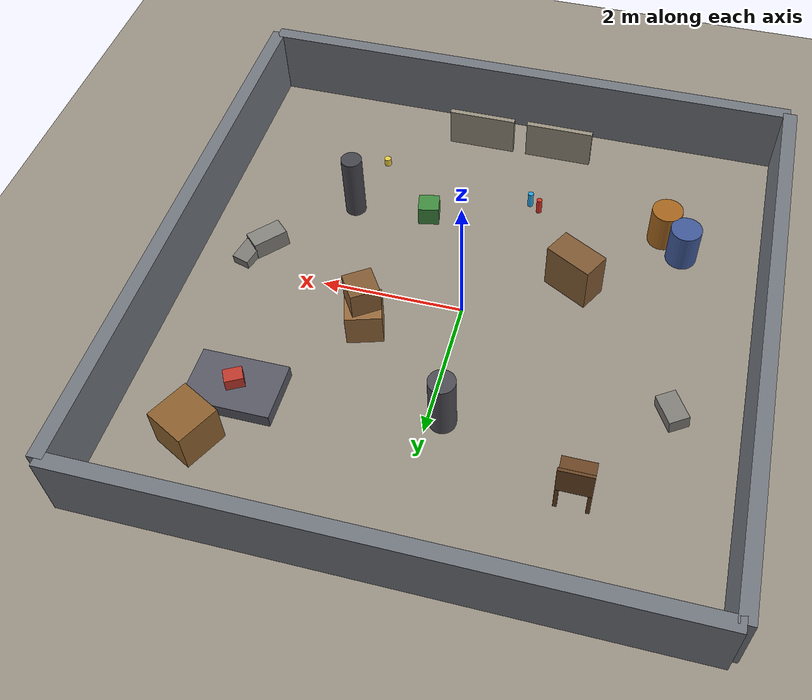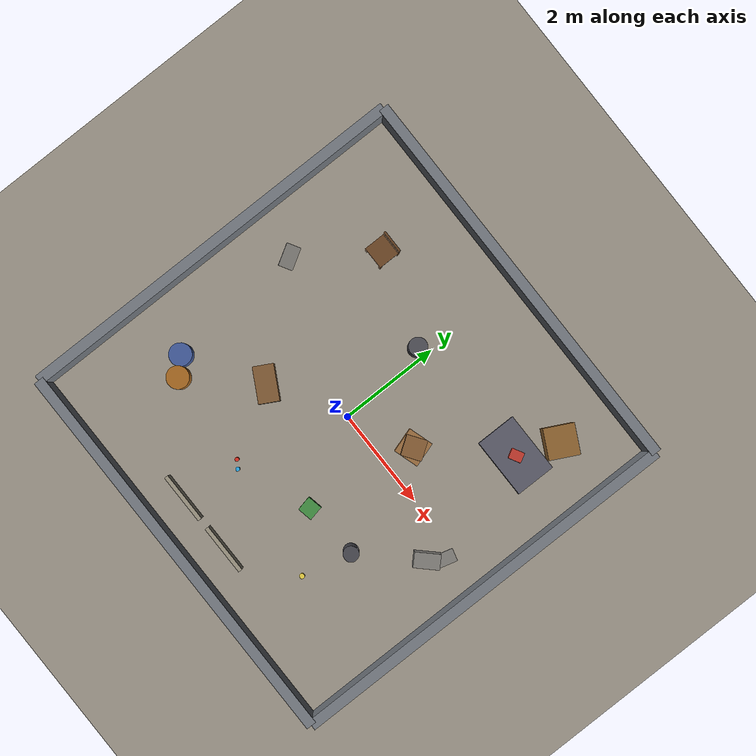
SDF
<?xml version="1.0" ?>
<sdf version="1.9">
  <world name="walle_arena">
    <gravity>0 0 -9.81</gravity>
    <magnetic_field>6e-06 2.3e-05 -4.2e-05</magnetic_field>
    <atmosphere type="adiabatic"/>

    <physics name="physics" type="ignored">
      <max_step_size>0.001</max_step_size>
      <real_time_factor>1.0</real_time_factor>
      <real_time_update_rate>1000</real_time_update_rate>
    </physics>

    <plugin filename="gz-sim-physics-system" name="gz::sim::systems::Physics"/>
    <plugin filename="gz-sim-user-commands-system" name="gz::sim::systems::UserCommands"/>
    <plugin filename="gz-sim-scene-broadcaster-system" name="gz::sim::systems::SceneBroadcaster"/>
    <plugin filename="gz-sim-sensors-system" name="gz::sim::systems::Sensors">
      <render_engine>ogre2</render_engine>
    </plugin>

    <!-- ── Ánh sáng mặt trời chính ─────────────────────────────────── -->
    <light name="sun" type="directional">
      <cast_shadows>true</cast_shadows>
      <pose>0 0 10 0 0 0</pose>
      <diffuse>0.85 0.85 0.85 1</diffuse>
      <specular>0.2 0.2 0.2 1</specular>
      <direction>-0.5 0.1 -0.9</direction>
    </light>

    <!-- Đèn góc 1 -->
    <light name="light_corner1" type="point">
      <pose>3.5 3.5 2.0 0 0 0</pose>
      <diffuse>1.0 0.9 0.7 1</diffuse>
      <specular>0.3 0.3 0.3 1</specular>
      <attenuation>
        <range>6</range>
        <constant>0.3</constant>
        <linear>0.1</linear>
        <quadratic>0.05</quadratic>
      </attenuation>
    </light>

    <!-- Đèn góc 2 -->
    <light name="light_corner2" type="point">
      <pose>-3.5 -3.5 2.0 0 0 0</pose>
      <diffuse>0.7 0.8 1.0 1</diffuse>
      <specular>0.2 0.2 0.2 1</specular>
      <attenuation>
        <range>6</range>
        <constant>0.3</constant>
        <linear>0.1</linear>
        <quadratic>0.05</quadratic>
      </attenuation>
    </light>

    <!-- ── Sàn nhà ────────────────────────────────────────────────── -->
    <model name="ground_plane">
      <static>true</static>
      <link name="link">
        <collision name="collision">
          <geometry>
            <plane>
              <normal>0 0 1</normal>
              <size>20 20</size>
            </plane>
          </geometry>
        </collision>
        <visual name="visual">
          <geometry>
            <plane>
              <normal>0 0 1</normal>
              <size>20 20</size>
            </plane>
          </geometry>
          <material>
            <ambient>0.55 0.52 0.48 1</ambient>
            <diffuse>0.60 0.57 0.52 1</diffuse>
            <specular>0.05 0.05 0.05 1</specular>
          </material>
        </visual>
      </link>
    </model>

    <!-- ── Tường bao quanh ────────────────────────────────────────── -->
    <model name="wall_north">
      <static>true</static>
      <pose>0 4 0.5 0 0 0</pose>
      <link name="link">
        <collision name="collision">
          <geometry><box><size>8 0.2 1.0</size></box></geometry>
        </collision>
        <visual name="visual">
          <geometry><box><size>8 0.2 1.0</size></box></geometry>
          <material>
            <ambient>0.40 0.42 0.45 1</ambient>
            <diffuse>0.45 0.47 0.50 1</diffuse>
          </material>
        </visual>
      </link>
    </model>

    <model name="wall_south">
      <static>true</static>
      <pose>0 -4 0.5 0 0 0</pose>
      <link name="link">
        <collision name="collision">
          <geometry><box><size>8 0.2 1.0</size></box></geometry>
        </collision>
        <visual name="visual">
          <geometry><box><size>8 0.2 1.0</size></box></geometry>
          <material>
            <ambient>0.40 0.42 0.45 1</ambient>
            <diffuse>0.45 0.47 0.50 1</diffuse>
          </material>
        </visual>
      </link>
    </model>

    <model name="wall_east">
      <static>true</static>
      <pose>4 0 0.5 0 0 0</pose>
      <link name="link">
        <collision name="collision">
          <geometry><box><size>0.2 8 1.0</size></box></geometry>
        </collision>
        <visual name="visual">
          <geometry><box><size>0.2 8 1.0</size></box></geometry>
          <material>
            <ambient>0.40 0.42 0.45 1</ambient>
            <diffuse>0.45 0.47 0.50 1</diffuse>
          </material>
        </visual>
      </link>
    </model>

    <model name="wall_west">
      <static>true</static>
      <pose>-4 0 0.5 0 0 0</pose>
      <link name="link">
        <collision name="collision">
          <geometry><box><size>0.2 8 1.0</size></box></geometry>
        </collision>
        <visual name="visual">
          <geometry><box><size>0.2 8 1.0</size></box></geometry>
          <material>
            <ambient>0.40 0.42 0.45 1</ambient>
            <diffuse>0.45 0.47 0.50 1</diffuse>
          </material>
        </visual>
      </link>
    </model>

    <!-- ── Thùng hàng (crate) ─────────────────────────────────────── -->
    <model name="crate_1">
      <static>true</static>
      <pose>1.2 0.6 0.25 0 0 0.3</pose>
      <link name="link">
        <collision name="collision">
          <geometry><box><size>0.5 0.5 0.5</size></box></geometry>
        </collision>
        <visual name="visual">
          <geometry><box><size>0.5 0.5 0.5</size></box></geometry>
          <material>
            <ambient>0.55 0.38 0.20 1</ambient>
            <diffuse>0.60 0.42 0.24 1</diffuse>
          </material>
        </visual>
      </link>
    </model>

    <model name="crate_2">
      <static>true</static>
      <pose>-1.4 -0.8 0.35 0 0 -0.5</pose>
      <link name="link">
        <collision name="collision">
          <geometry><box><size>0.7 0.4 0.7</size></box></geometry>
        </collision>
        <visual name="visual">
          <geometry><box><size>0.7 0.4 0.7</size></box></geometry>
          <material>
            <ambient>0.45 0.32 0.18 1</ambient>
            <diffuse>0.50 0.35 0.20 1</diffuse>
          </material>
        </visual>
      </link>
    </model>

    <!-- Crate chồng lên crate_1 -->
    <model name="crate_3">
      <static>true</static>
      <pose>1.2 0.6 0.75 0 0 0.6</pose>
      <link name="link">
        <collision name="collision">
          <geometry><box><size>0.4 0.4 0.4</size></box></geometry>
        </collision>
        <visual name="visual">
          <geometry><box><size>0.4 0.4 0.4</size></box></geometry>
          <material>
            <ambient>0.48 0.33 0.18 1</ambient>
            <diffuse>0.52 0.36 0.20 1</diffuse>
          </material>
        </visual>
      </link>
    </model>

    <!-- Crate góc đông-bắc -->
    <model name="crate_4">
      <static>true</static>
      <pose>2.8 2.8 0.3 0 0 1.1</pose>
      <link name="link">
        <collision name="collision">
          <geometry><box><size>0.6 0.6 0.6</size></box></geometry>
        </collision>
        <visual name="visual">
          <geometry><box><size>0.6 0.6 0.6</size></box></geometry>
          <material>
            <ambient>0.50 0.35 0.15 1</ambient>
            <diffuse>0.55 0.38 0.18 1</diffuse>
          </material>
        </visual>
      </link>
    </model>

    <!-- ── Cột trụ ────────────────────────────────────────────────── -->
    <model name="pillar_1">
      <static>true</static>
      <pose>-0.2 1.8 0.45 0 0 0</pose>
      <link name="link">
        <collision name="collision">
          <geometry><cylinder><radius>0.18</radius><length>0.9</length></cylinder></geometry>
        </collision>
        <visual name="visual">
          <geometry><cylinder><radius>0.18</radius><length>0.9</length></cylinder></geometry>
          <material>
            <ambient>0.25 0.25 0.28 1</ambient>
            <diffuse>0.30 0.30 0.33 1</diffuse>
          </material>
        </visual>
      </link>
    </model>

    <!-- Cột trụ thứ 2 -->
    <model name="pillar_2">
      <static>true</static>
      <pose>2.0 -1.5 0.5 0 0 0</pose>
      <link name="link">
        <collision name="collision">
          <geometry><cylinder><radius>0.15</radius><length>1.0</length></cylinder></geometry>
        </collision>
        <visual name="visual">
          <geometry><cylinder><radius>0.15</radius><length>1.0</length></cylinder></geometry>
          <material>
            <ambient>0.22 0.22 0.25 1</ambient>
            <diffuse>0.27 0.27 0.30 1</diffuse>
          </material>
        </visual>
      </link>
    </model>

    <!-- ── Rác và đồ vật nhỏ ──────────────────────────────────────── -->
    <!-- Khối rác xanh (trash cube) -->
    <model name="trash_cube">
      <static>true</static>
      <pose>0.9 -1.6 0.15 0 0 0.2</pose>
      <link name="link">
        <collision name="collision">
          <geometry><box><size>0.3 0.3 0.3</size></box></geometry>
        </collision>
        <visual name="visual">
          <geometry><box><size>0.3 0.3 0.3</size></box></geometry>
          <material>
            <ambient>0.20 0.45 0.20 1</ambient>
            <diffuse>0.25 0.55 0.25 1</diffuse>
          </material>
        </visual>
      </link>
    </model>

    <!-- Chai (bottle) — YOLO sẽ nhận diện -->
    <model name="bottle_1">
      <static>true</static>
      <pose>-0.5 -2.2 0.12 0 0 0</pose>
      <link name="link">
        <collision name="collision">
          <geometry><cylinder><radius>0.04</radius><length>0.24</length></cylinder></geometry>
        </collision>
        <visual name="visual">
          <geometry><cylinder><radius>0.04</radius><length>0.24</length></cylinder></geometry>
          <material>
            <ambient>0.10 0.55 0.80 1</ambient>
            <diffuse>0.15 0.65 0.90 1</diffuse>
          </material>
        </visual>
      </link>
    </model>

    <model name="bottle_2">
      <static>true</static>
      <pose>-0.65 -2.1 0.12 0 0 0.4</pose>
      <link name="link">
        <collision name="collision">
          <geometry><cylinder><radius>0.04</radius><length>0.24</length></cylinder></geometry>
        </collision>
        <visual name="visual">
          <geometry><cylinder><radius>0.04</radius><length>0.24</length></cylinder></geometry>
          <material>
            <ambient>0.70 0.15 0.10 1</ambient>
            <diffuse>0.85 0.18 0.12 1</diffuse>
          </material>
        </visual>
      </link>
    </model>

    <!-- Cup / ly (cup) — YOLO sẽ nhận diện -->
    <model name="cup_1">
      <static>true</static>
      <pose>1.8 -2.5 0.08 0 0 0</pose>
      <link name="link">
        <collision name="collision">
          <geometry><cylinder><radius>0.05</radius><length>0.12</length></cylinder></geometry>
        </collision>
        <visual name="visual">
          <geometry><cylinder><radius>0.05</radius><length>0.12</length></cylinder></geometry>
          <material>
            <ambient>0.85 0.75 0.20 1</ambient>
            <diffuse>0.90 0.80 0.25 1</diffuse>
          </material>
        </visual>
      </link>
    </model>

    <!-- Ghế (chair) — YOLO sẽ nhận diện -->
    <!-- Chân ghế -->
    <model name="chair_leg_fl">
      <static>true</static>
      <pose>-2.2 2.2 0.2 0 0 0</pose>
      <link name="link">
        <collision name="collision">
          <geometry><box><size>0.05 0.05 0.4</size></box></geometry>
        </collision>
        <visual name="visual">
          <geometry><box><size>0.05 0.05 0.4</size></box></geometry>
          <material><ambient>0.35 0.22 0.10 1</ambient><diffuse>0.40 0.25 0.12 1</diffuse></material>
        </visual>
      </link>
    </model>
    <model name="chair_leg_fr">
      <static>true</static>
      <pose>-1.8 2.2 0.2 0 0 0</pose>
      <link name="link">
        <collision name="collision">
          <geometry><box><size>0.05 0.05 0.4</size></box></geometry>
        </collision>
        <visual name="visual">
          <geometry><box><size>0.05 0.05 0.4</size></box></geometry>
          <material><ambient>0.35 0.22 0.10 1</ambient><diffuse>0.40 0.25 0.12 1</diffuse></material>
        </visual>
      </link>
    </model>
    <model name="chair_leg_bl">
      <static>true</static>
      <pose>-2.2 2.6 0.2 0 0 0</pose>
      <link name="link">
        <collision name="collision">
          <geometry><box><size>0.05 0.05 0.4</size></box></geometry>
        </collision>
        <visual name="visual">
          <geometry><box><size>0.05 0.05 0.4</size></box></geometry>
          <material><ambient>0.35 0.22 0.10 1</ambient><diffuse>0.40 0.25 0.12 1</diffuse></material>
        </visual>
      </link>
    </model>
    <model name="chair_leg_br">
      <static>true</static>
      <pose>-1.8 2.6 0.2 0 0 0</pose>
      <link name="link">
        <collision name="collision">
          <geometry><box><size>0.05 0.05 0.4</size></box></geometry>
        </collision>
        <visual name="visual">
          <geometry><box><size>0.05 0.05 0.4</size></box></geometry>
          <material><ambient>0.35 0.22 0.10 1</ambient><diffuse>0.40 0.25 0.12 1</diffuse></material>
        </visual>
      </link>
    </model>
    <!-- Mặt ghế -->
    <model name="chair_seat">
      <static>true</static>
      <pose>-2.0 2.4 0.42 0 0 0</pose>
      <link name="link">
        <collision name="collision">
          <geometry><box><size>0.45 0.45 0.04</size></box></geometry>
        </collision>
        <visual name="visual">
          <geometry><box><size>0.45 0.45 0.04</size></box></geometry>
          <material><ambient>0.38 0.24 0.12 1</ambient><diffuse>0.42 0.27 0.14 1</diffuse></material>
        </visual>
      </link>
    </model>
    <!-- Lưng ghế -->
    <model name="chair_back">
      <static>true</static>
      <pose>-2.0 2.62 0.65 0 0 0</pose>
      <link name="link">
        <collision name="collision">
          <geometry><box><size>0.45 0.04 0.45</size></box></geometry>
        </collision>
        <visual name="visual">
          <geometry><box><size>0.45 0.04 0.45</size></box></geometry>
          <material><ambient>0.38 0.24 0.12 1</ambient><diffuse>0.42 0.27 0.14 1</diffuse></material>
        </visual>
      </link>
    </model>

    <!-- ── Đống đổ nát / rào chắn ────────────────────────────────── -->
    <!-- Khối bê tông vỡ 1 -->
    <model name="rubble_1">
      <static>true</static>
      <pose>3.0 -0.5 0.12 0.1 0.05 0.8</pose>
      <link name="link">
        <collision name="collision">
          <geometry><box><size>0.5 0.3 0.25</size></box></geometry>
        </collision>
        <visual name="visual">
          <geometry><box><size>0.5 0.3 0.25</size></box></geometry>
          <material>
            <ambient>0.48 0.47 0.45 1</ambient>
            <diffuse>0.52 0.51 0.49 1</diffuse>
          </material>
        </visual>
      </link>
    </model>

    <model name="rubble_2">
      <static>true</static>
      <pose>3.2 -0.2 0.08 -0.05 0.1 1.3</pose>
      <link name="link">
        <collision name="collision">
          <geometry><box><size>0.35 0.25 0.16</size></box></geometry>
        </collision>
        <visual name="visual">
          <geometry><box><size>0.35 0.25 0.16</size></box></geometry>
          <material>
            <ambient>0.45 0.44 0.42 1</ambient>
            <diffuse>0.49 0.48 0.46 1</diffuse>
          </material>
        </visual>
      </link>
    </model>

    <model name="rubble_3">
      <static>true</static>
      <pose>-3.0 1.0 0.10 0.08 -0.06 2.1</pose>
      <link name="link">
        <collision name="collision">
          <geometry><box><size>0.45 0.28 0.20</size></box></geometry>
        </collision>
        <visual name="visual">
          <geometry><box><size>0.45 0.28 0.20</size></box></geometry>
          <material>
            <ambient>0.46 0.45 0.43 1</ambient>
            <diffuse>0.50 0.49 0.47 1</diffuse>
          </material>
        </visual>
      </link>
    </model>

    <!-- ── Thùng kim loại (barrel) ───────────────────────────────── -->
    <model name="barrel_1">
      <static>true</static>
      <pose>-2.5 -2.0 0.3 0 0 0</pose>
      <link name="link">
        <collision name="collision">
          <geometry><cylinder><radius>0.22</radius><length>0.60</length></cylinder></geometry>
        </collision>
        <visual name="visual">
          <geometry><cylinder><radius>0.22</radius><length>0.60</length></cylinder></geometry>
          <material>
            <ambient>0.60 0.35 0.10 1</ambient>
            <diffuse>0.65 0.40 0.12 1</diffuse>
          </material>
        </visual>
      </link>
    </model>

    <model name="barrel_2">
      <static>true</static>
      <pose>-2.8 -1.7 0.3 0 0 0</pose>
      <link name="link">
        <collision name="collision">
          <geometry><cylinder><radius>0.22</radius><length>0.60</length></cylinder></geometry>
        </collision>
        <visual name="visual">
          <geometry><cylinder><radius>0.22</radius><length>0.60</length></cylinder></geometry>
          <material>
            <ambient>0.20 0.30 0.55 1</ambient>
            <diffuse>0.25 0.35 0.60 1</diffuse>
          </material>
        </visual>
      </link>
    </model>

    <!-- ── Bục / bệ (platform) ───────────────────────────────────── -->
    <model name="platform_1">
      <static>true</static>
      <pose>2.5 2.0 0.1 0 0 0</pose>
      <link name="link">
        <collision name="collision">
          <geometry><box><size>1.2 0.8 0.2</size></box></geometry>
        </collision>
        <visual name="visual">
          <geometry><box><size>1.2 0.8 0.2</size></box></geometry>
          <material>
            <ambient>0.30 0.30 0.35 1</ambient>
            <diffuse>0.35 0.35 0.40 1</diffuse>
          </material>
        </visual>
      </link>
    </model>

    <!-- Vật nhỏ trên bục -->
    <model name="box_on_platform">
      <static>true</static>
      <pose>2.5 2.0 0.30 0 0 0.5</pose>
      <link name="link">
        <collision name="collision">
          <geometry><box><size>0.25 0.20 0.18</size></box></geometry>
        </collision>
        <visual name="visual">
          <geometry><box><size>0.25 0.20 0.18</size></box></geometry>
          <material>
            <ambient>0.70 0.20 0.15 1</ambient>
            <diffuse>0.75 0.22 0.17 1</diffuse>
          </material>
        </visual>
      </link>
    </model>

    <!-- ── Hàng rào ngắn (fence segment) ────────────────────────── -->
    <model name="fence_1">
      <static>true</static>
      <pose>0.5 -3.3 0.3 0 0 0</pose>
      <link name="link">
        <collision name="collision">
          <geometry><box><size>1.0 0.08 0.6</size></box></geometry>
        </collision>
        <visual name="visual">
          <geometry><box><size>1.0 0.08 0.6</size></box></geometry>
          <material>
            <ambient>0.55 0.52 0.45 1</ambient>
            <diffuse>0.60 0.57 0.50 1</diffuse>
          </material>
        </visual>
      </link>
    </model>

    <model name="fence_2">
      <static>true</static>
      <pose>-0.7 -3.3 0.3 0 0 0</pose>
      <link name="link">
        <collision name="collision">
          <geometry><box><size>1.0 0.08 0.6</size></box></geometry>
        </collision>
        <visual name="visual">
          <geometry><box><size>1.0 0.08 0.6</size></box></geometry>
          <material>
            <ambient>0.55 0.52 0.45 1</ambient>
            <diffuse>0.60 0.57 0.50 1</diffuse>
          </material>
        </visual>
      </link>
    </model>

  </world>
</sdf>
